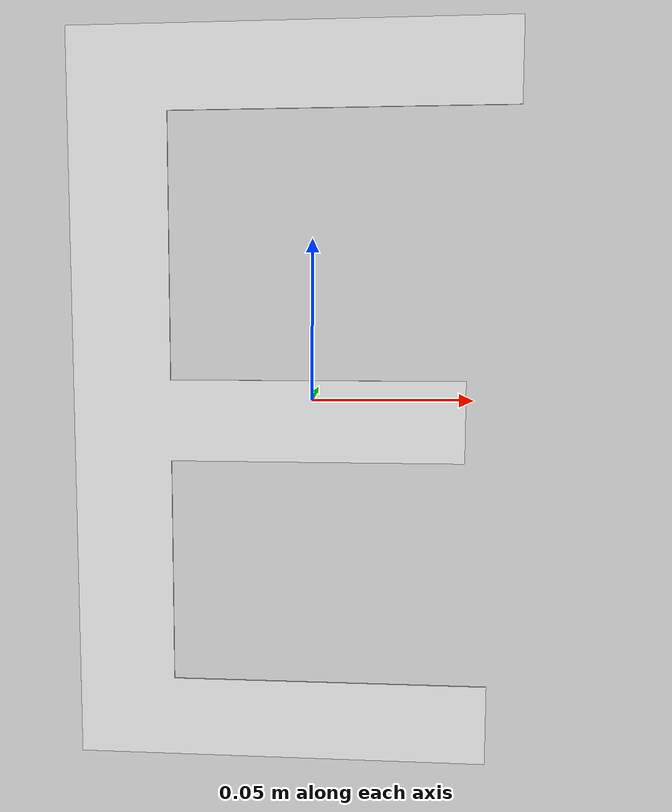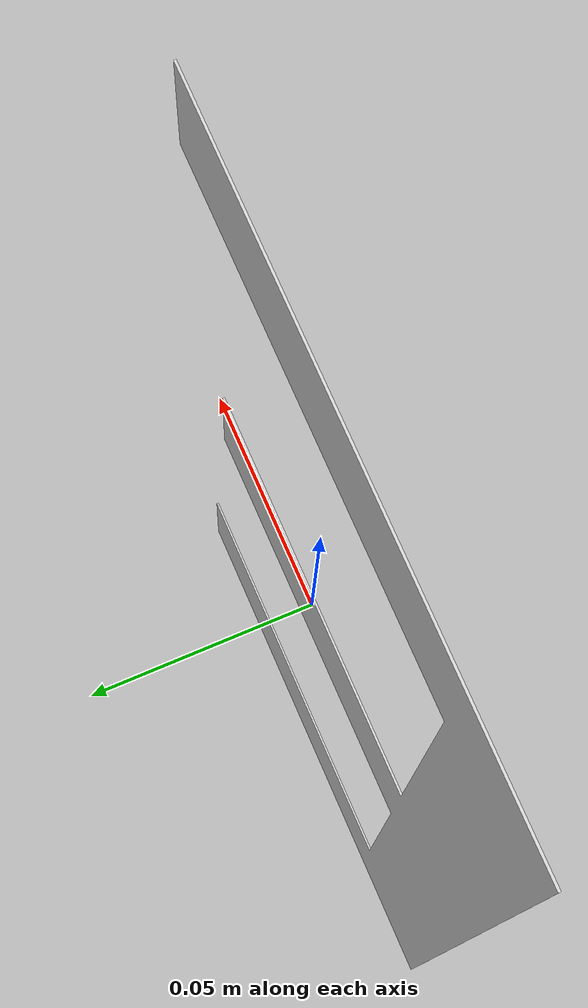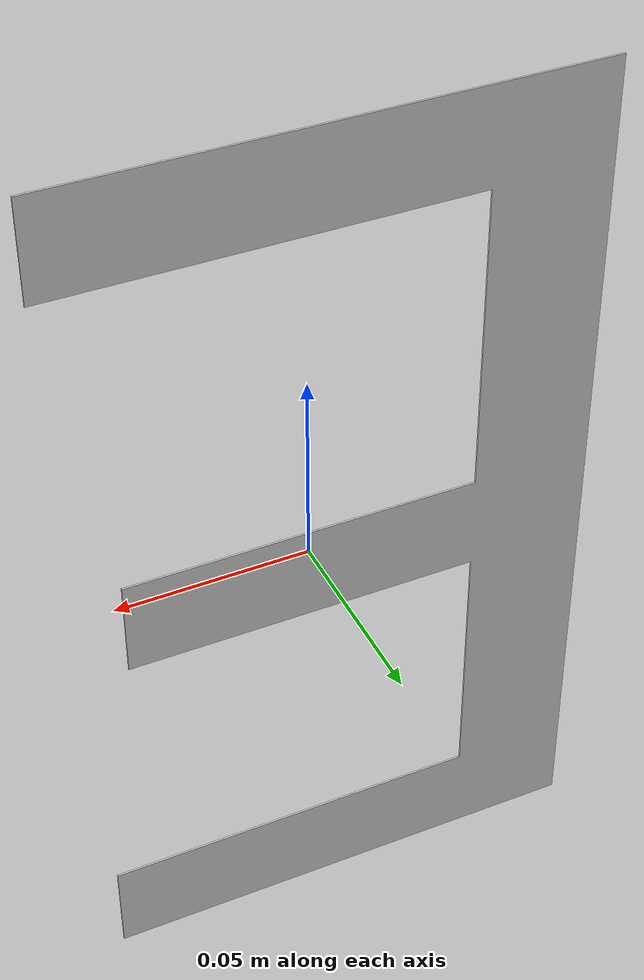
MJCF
<mujoco model="scene_E_edit">
  <compiler angle="degree" meshdir="meshes" texturedir="textures"/>
  <option gravity="0 0 -9.81"/>
  <default>
    <joint armature="0.01" damping="0.5"/>
    <default class="visual">
      <geom contype="0" conaffinity="0" group="2"/>
    </default>
    <default class="collision">
      <geom rgba="0.9 0.9 0.0 0.2" group="3"/>
    </default>
  </default>
  <asset>
    <material name="M_mat0_005" rgba="0.8471 0.8471 0.8471 1.0000"/>
    <mesh name="ImagetostlMesh0004" file="ImagetostlMesh0004.obj" inertia="shell"/>
  </asset>
  <worldbody>
    <body name="imagetostl_mesh_0_004" pos="0.000000 -0.000000 -0.000000">
      <geom type="mesh" mesh="ImagetostlMesh0004" class="visual" material="M_mat0_005"/>
      <geom name="imagetostl_mesh_0004_aabb" type="box" pos="-0.0068 0.0000 -0.0014" size="0.0695 0.0050 0.1166" class="collision"/>
    </body>
  </worldbody>
</mujoco>
